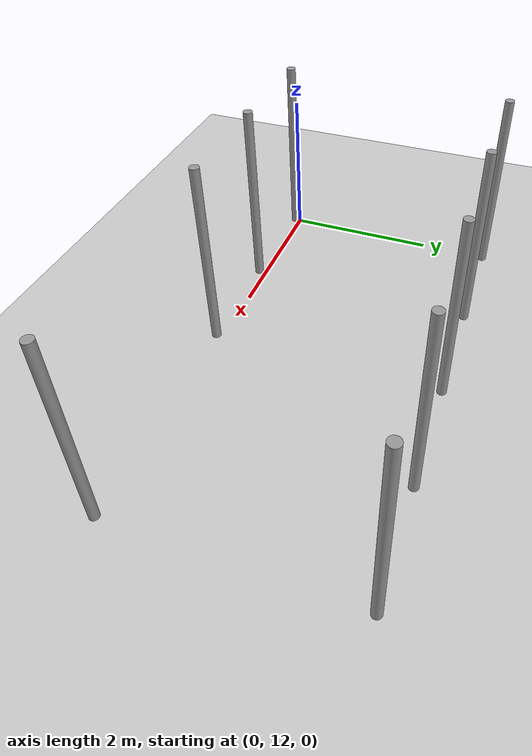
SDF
<sdf version="1.6">
 <world name="default">
  <model name="ground_plane">
   <static>1</static>
   <link name="link">
    <collision name="collision">
     <geometry><plane><normal>0 0 1</normal><size>100 100</size></plane></geometry>
     <surface><friction><ode><mu>100</mu><mu2>50</mu2></ode></friction></surface>
    </collision>
    <visual name="visual">
     <cast_shadows>0</cast_shadows>
     <geometry><plane><normal>0 0 1</normal><size>100 100</size></plane></geometry>
     <material>
      <script><uri>file://media/materials/scripts/gazebo.material</uri><name>Gazebo/Grey</name></script>
     </material>
    </visual>
   </link>
  </model>
  <model name="pole_1">
   <link name="link_0">
    <inertial>
     <mass>0.0364582</mass>
     <inertia>
      <ixx>0.00312124</ixx>
      <ixy>0</ixy>
      <ixz>0</ixz>
      <iyy>0.00312124</iyy>
      <iyz>0</iyz>
      <izz>0.00016615</izz>
     </inertia>
    </inertial>
    <visual name="visual">
     <geometry><cylinder><radius>0.06</radius><length>2.5</length></cylinder></geometry>
     <material>
      <lighting>1</lighting>
      <script><uri>file://media/materials/scripts/gazebo.material</uri><name>Gazebo/Grey</name></script>
      <ambient>0.3 0.3 0.3 1</ambient>
      <diffuse>0.7 0.7 0.7 1</diffuse>
      <specular>0.01 0.01 0.01 1</specular>
      <emissive>0 0 0 1</emissive>
      <shader type="vertex"><normal_map>__default__</normal_map></shader>
     </material>
    </visual>
    <collision name="collision">
     <geometry><cylinder><radius>0.06</radius><length>2.5</length></cylinder></geometry>
     <surface>
      <friction>
       <ode><mu>1</mu><mu2>1</mu2><fdir1>0 0 0</fdir1><slip1>0</slip1><slip2>0</slip2></ode>
       <torsional>
        <coefficient>1</coefficient>
        <patch_radius>0</patch_radius>
        <surface_radius>0</surface_radius>
        <use_patch_radius>1</use_patch_radius>
        <ode><slip>0</slip></ode>
       </torsional>
      </friction>
      <bounce><restitution_coefficient>0</restitution_coefficient><threshold>1e+06</threshold></bounce>
      <contact>
       <collide_without_contact>0</collide_without_contact>
       <collide_without_contact_bitmask>1</collide_without_contact_bitmask>
       <collide_bitmask>1</collide_bitmask>
       <ode>
        <soft_cfm>0</soft_cfm>
        <soft_erp>0.2</soft_erp>
        <kp>1e+13</kp>
        <kd>1</kd>
        <max_vel>0.01</max_vel>
        <min_depth>0</min_depth>
       </ode>
       <bullet>
        <split_impulse>1</split_impulse>
        <split_impulse_penetration_threshold>-0.01</split_impulse_penetration_threshold>
        <soft_cfm>0</soft_cfm>
        <soft_erp>0.2</soft_erp>
        <kp>1e+13</kp>
        <kd>1</kd>
       </bullet>
      </contact>
     </surface>
    </collision>
   </link>
   <static>0</static>
   <pose>-0.008122 11.9213 1.24999 -0 2e-06 -0.017959</pose>
  </model>
  <model name="pole_2">
   <link name="link_0">
    <inertial>
     <mass>0.0364582</mass>
     <inertia>
      <ixx>0.00312124</ixx>
      <ixy>0</ixy>
      <ixz>0</ixz>
      <iyy>0.00312124</iyy>
      <iyz>0</iyz>
      <izz>0.00016615</izz>
     </inertia>
    </inertial>
    <visual name="visual">
     <geometry><cylinder><radius>0.06</radius><length>2.5</length></cylinder></geometry>
     <material>
      <lighting>1</lighting>
      <script><uri>file://media/materials/scripts/gazebo.material</uri><name>Gazebo/Grey</name></script>
      <ambient>0.3 0.3 0.3 1</ambient>
      <diffuse>0.7 0.7 0.7 1</diffuse>
      <specular>0.01 0.01 0.01 1</specular>
      <emissive>0 0 0 1</emissive>
      <shader type="vertex"><normal_map>__default__</normal_map></shader>
     </material>
    </visual>
    <collision name="collision">
     <geometry><cylinder><radius>0.06</radius><length>2.5</length></cylinder></geometry>
     <surface>
      <friction>
       <ode><mu>1</mu><mu2>1</mu2><fdir1>0 0 0</fdir1><slip1>0</slip1><slip2>0</slip2></ode>
       <torsional>
        <coefficient>1</coefficient>
        <patch_radius>0</patch_radius>
        <surface_radius>0</surface_radius>
        <use_patch_radius>1</use_patch_radius>
        <ode><slip>0</slip></ode>
       </torsional>
      </friction>
      <bounce><restitution_coefficient>0</restitution_coefficient><threshold>1e+06</threshold></bounce>
      <contact>
       <collide_without_contact>0</collide_without_contact>
       <collide_without_contact_bitmask>1</collide_without_contact_bitmask>
       <collide_bitmask>1</collide_bitmask>
       <ode>
        <soft_cfm>0</soft_cfm>
        <soft_erp>0.2</soft_erp>
        <kp>1e+13</kp>
        <kd>1</kd>
        <max_vel>0.01</max_vel>
        <min_depth>0</min_depth>
       </ode>
       <bullet>
        <split_impulse>1</split_impulse>
        <split_impulse_penetration_threshold>-0.01</split_impulse_penetration_threshold>
        <soft_cfm>0</soft_cfm>
        <soft_erp>0.2</soft_erp>
        <kp>1e+13</kp>
        <kd>1</kd>
       </bullet>
      </contact>
     </surface>
    </collision>
   </link>
   <static>0</static>
   <pose>0.027547 14.8942 1.25 -1e-06 1e-06 0.219671</pose>
  </model>
  <model name="pole_20">
   <link name="link_0">
    <inertial>
     <mass>0.0364582</mass>
     <inertia>
      <ixx>0.00312124</ixx>
      <ixy>0</ixy>
      <ixz>0</ixz>
      <iyy>0.00312124</iyy>
      <iyz>0</iyz>
      <izz>0.00016615</izz>
     </inertia>
    </inertial>
    <visual name="visual">
     <geometry><cylinder><radius>0.06</radius><length>2.5</length></cylinder></geometry>
     <material>
      <lighting>1</lighting>
      <script><uri>file://media/materials/scripts/gazebo.material</uri><name>Gazebo/Grey</name></script>
      <ambient>0.3 0.3 0.3 1</ambient>
      <diffuse>0.7 0.7 0.7 1</diffuse>
      <specular>0.01 0.01 0.01 1</specular>
      <emissive>0 0 0 1</emissive>
      <shader type="vertex"><normal_map>__default__</normal_map></shader>
     </material>
    </visual>
    <collision name="collision">
     <geometry><cylinder><radius>0.06</radius><length>2.5</length></cylinder></geometry>
     <surface>
      <friction>
       <ode><mu>1</mu><mu2>1</mu2><fdir1>0 0 0</fdir1><slip1>0</slip1><slip2>0</slip2></ode>
       <torsional>
        <coefficient>1</coefficient>
        <patch_radius>0</patch_radius>
        <surface_radius>0</surface_radius>
        <use_patch_radius>1</use_patch_radius>
        <ode><slip>0</slip></ode>
       </torsional>
      </friction>
      <bounce><restitution_coefficient>0</restitution_coefficient><threshold>1e+06</threshold></bounce>
      <contact>
       <collide_without_contact>0</collide_without_contact>
       <collide_without_contact_bitmask>1</collide_without_contact_bitmask>
       <collide_bitmask>1</collide_bitmask>
       <ode>
        <soft_cfm>0</soft_cfm>
        <soft_erp>0.2</soft_erp>
        <kp>1e+13</kp>
        <kd>1</kd>
        <max_vel>0.01</max_vel>
        <min_depth>0</min_depth>
       </ode>
       <bullet>
        <split_impulse>1</split_impulse>
        <split_impulse_penetration_threshold>-0.01</split_impulse_penetration_threshold>
        <soft_cfm>0</soft_cfm>
        <soft_erp>0.2</soft_erp>
        <kp>1e+13</kp>
        <kd>1</kd>
       </bullet>
      </contact>
     </surface>
    </collision>
   </link>
   <static>0</static>
   <pose>1.39577 11.9005 1.25 -1e-06 -0 -0.005165</pose>
  </model>
  <model name="pole_21">
   <link name="link_0">
    <inertial>
     <mass>0.0364582</mass>
     <inertia>
      <ixx>0.00312124</ixx>
      <ixy>0</ixy>
      <ixz>0</ixz>
      <iyy>0.00312124</iyy>
      <iyz>0</iyz>
      <izz>0.00016615</izz>
     </inertia>
    </inertial>
    <visual name="visual">
     <geometry><cylinder><radius>0.06</radius><length>2.5</length></cylinder></geometry>
     <material>
      <lighting>1</lighting>
      <script><uri>file://media/materials/scripts/gazebo.material</uri><name>Gazebo/Grey</name></script>
      <ambient>0.3 0.3 0.3 1</ambient>
      <diffuse>0.7 0.7 0.7 1</diffuse>
      <specular>0.01 0.01 0.01 1</specular>
      <emissive>0 0 0 1</emissive>
      <shader type="vertex"><normal_map>__default__</normal_map></shader>
     </material>
    </visual>
    <collision name="collision">
     <geometry><cylinder><radius>0.06</radius><length>2.5</length></cylinder></geometry>
     <surface>
      <friction>
       <ode><mu>1</mu><mu2>1</mu2><fdir1>0 0 0</fdir1><slip1>0</slip1><slip2>0</slip2></ode>
       <torsional>
        <coefficient>1</coefficient>
        <patch_radius>0</patch_radius>
        <surface_radius>0</surface_radius>
        <use_patch_radius>1</use_patch_radius>
        <ode><slip>0</slip></ode>
       </torsional>
      </friction>
      <bounce><restitution_coefficient>0</restitution_coefficient><threshold>1e+06</threshold></bounce>
      <contact>
       <collide_without_contact>0</collide_without_contact>
       <collide_without_contact_bitmask>1</collide_without_contact_bitmask>
       <collide_bitmask>1</collide_bitmask>
       <ode>
        <soft_cfm>0</soft_cfm>
        <soft_erp>0.2</soft_erp>
        <kp>1e+13</kp>
        <kd>1</kd>
        <max_vel>0.01</max_vel>
        <min_depth>0</min_depth>
       </ode>
       <bullet>
        <split_impulse>1</split_impulse>
        <split_impulse_penetration_threshold>-0.01</split_impulse_penetration_threshold>
        <soft_cfm>0</soft_cfm>
        <soft_erp>0.2</soft_erp>
        <kp>1e+13</kp>
        <kd>1</kd>
       </bullet>
      </contact>
     </surface>
    </collision>
   </link>
   <static>0</static>
   <pose>2.80779 11.901 1.25 0 0 -0.022297</pose>
  </model>
  <model name="pole_23">
   <link name="link_0">
    <inertial>
     <mass>0.0364582</mass>
     <inertia>
      <ixx>0.00312124</ixx>
      <ixy>0</ixy>
      <ixz>0</ixz>
      <iyy>0.00312124</iyy>
      <iyz>0</iyz>
      <izz>0.00016615</izz>
     </inertia>
    </inertial>
    <visual name="visual">
     <geometry><cylinder><radius>0.06</radius><length>2.5</length></cylinder></geometry>
     <material>
      <lighting>1</lighting>
      <script><uri>file://media/materials/scripts/gazebo.material</uri><name>Gazebo/Grey</name></script>
      <ambient>0.3 0.3 0.3 1</ambient>
      <diffuse>0.7 0.7 0.7 1</diffuse>
      <specular>0.01 0.01 0.01 1</specular>
      <emissive>0 0 0 1</emissive>
      <shader type="vertex"><normal_map>__default__</normal_map></shader>
     </material>
    </visual>
    <collision name="collision">
     <geometry><cylinder><radius>0.06</radius><length>2.5</length></cylinder></geometry>
     <surface>
      <friction>
       <ode><mu>1</mu><mu2>1</mu2><fdir1>0 0 0</fdir1><slip1>0</slip1><slip2>0</slip2></ode>
       <torsional>
        <coefficient>1</coefficient>
        <patch_radius>0</patch_radius>
        <surface_radius>0</surface_radius>
        <use_patch_radius>1</use_patch_radius>
        <ode><slip>0</slip></ode>
       </torsional>
      </friction>
      <bounce><restitution_coefficient>0</restitution_coefficient><threshold>1e+06</threshold></bounce>
      <contact>
       <collide_without_contact>0</collide_without_contact>
       <collide_without_contact_bitmask>1</collide_without_contact_bitmask>
       <collide_bitmask>1</collide_bitmask>
       <ode>
        <soft_cfm>0</soft_cfm>
        <soft_erp>0.2</soft_erp>
        <kp>1e+13</kp>
        <kd>1</kd>
        <max_vel>0.01</max_vel>
        <min_depth>0</min_depth>
       </ode>
       <bullet>
        <split_impulse>1</split_impulse>
        <split_impulse_penetration_threshold>-0.01</split_impulse_penetration_threshold>
        <soft_cfm>0</soft_cfm>
        <soft_erp>0.2</soft_erp>
        <kp>1e+13</kp>
        <kd>1</kd>
       </bullet>
      </contact>
     </surface>
    </collision>
   </link>
   <static>0</static>
   <pose>5.61606 11.9005 1.24999 0 1e-06 -0.004268</pose>
  </model>
  <model name="pole_25">
   <link name="link_0">
    <inertial>
     <mass>0.0364582</mass>
     <inertia>
      <ixx>0.00312124</ixx>
      <ixy>0</ixy>
      <ixz>0</ixz>
      <iyy>0.00312124</iyy>
      <iyz>0</iyz>
      <izz>0.00016615</izz>
     </inertia>
    </inertial>
    <visual name="visual">
     <geometry><cylinder><radius>0.06</radius><length>2.5</length></cylinder></geometry>
     <material>
      <lighting>1</lighting>
      <script><uri>file://media/materials/scripts/gazebo.material</uri><name>Gazebo/Grey</name></script>
      <ambient>0.3 0.3 0.3 1</ambient>
      <diffuse>0.7 0.7 0.7 1</diffuse>
      <specular>0.01 0.01 0.01 1</specular>
      <emissive>0 0 0 1</emissive>
      <shader type="vertex"><normal_map>__default__</normal_map></shader>
     </material>
    </visual>
    <collision name="collision">
     <geometry><cylinder><radius>0.06</radius><length>2.5</length></cylinder></geometry>
     <surface>
      <friction>
       <ode><mu>1</mu><mu2>1</mu2><fdir1>0 0 0</fdir1><slip1>0</slip1><slip2>0</slip2></ode>
       <torsional>
        <coefficient>1</coefficient>
        <patch_radius>0</patch_radius>
        <surface_radius>0</surface_radius>
        <use_patch_radius>1</use_patch_radius>
        <ode><slip>0</slip></ode>
       </torsional>
      </friction>
      <bounce><restitution_coefficient>0</restitution_coefficient><threshold>1e+06</threshold></bounce>
      <contact>
       <collide_without_contact>0</collide_without_contact>
       <collide_without_contact_bitmask>1</collide_without_contact_bitmask>
       <collide_bitmask>1</collide_bitmask>
       <ode>
        <soft_cfm>0</soft_cfm>
        <soft_erp>0.2</soft_erp>
        <kp>1e+13</kp>
        <kd>1</kd>
        <max_vel>0.01</max_vel>
        <min_depth>0</min_depth>
       </ode>
       <bullet>
        <split_impulse>1</split_impulse>
        <split_impulse_penetration_threshold>-0.01</split_impulse_penetration_threshold>
        <soft_cfm>0</soft_cfm>
        <soft_erp>0.2</soft_erp>
        <kp>1e+13</kp>
        <kd>1</kd>
       </bullet>
      </contact>
     </surface>
    </collision>
   </link>
   <static>0</static>
   <pose>1.4041 14.8805 1.24999 -4e-05 0.000282 -0.025747</pose>
  </model>
  <model name="pole_26">
   <link name="link_0">
    <inertial>
     <mass>0.0364582</mass>
     <inertia>
      <ixx>0.00312124</ixx>
      <ixy>0</ixy>
      <ixz>0</ixz>
      <iyy>0.00312124</iyy>
      <iyz>0</iyz>
      <izz>0.00016615</izz>
     </inertia>
    </inertial>
    <visual name="visual">
     <geometry><cylinder><radius>0.06</radius><length>2.5</length></cylinder></geometry>
     <material>
      <lighting>1</lighting>
      <script><uri>file://media/materials/scripts/gazebo.material</uri><name>Gazebo/Grey</name></script>
      <ambient>0.3 0.3 0.3 1</ambient>
      <diffuse>0.7 0.7 0.7 1</diffuse>
      <specular>0.01 0.01 0.01 1</specular>
      <emissive>0 0 0 1</emissive>
      <shader type="vertex"><normal_map>__default__</normal_map></shader>
     </material>
    </visual>
    <collision name="collision">
     <geometry><cylinder><radius>0.06</radius><length>2.5</length></cylinder></geometry>
     <surface>
      <friction>
       <ode><mu>1</mu><mu2>1</mu2><fdir1>0 0 0</fdir1><slip1>0</slip1><slip2>0</slip2></ode>
       <torsional>
        <coefficient>1</coefficient>
        <patch_radius>0</patch_radius>
        <surface_radius>0</surface_radius>
        <use_patch_radius>1</use_patch_radius>
        <ode><slip>0</slip></ode>
       </torsional>
      </friction>
      <bounce><restitution_coefficient>0</restitution_coefficient><threshold>1e+06</threshold></bounce>
      <contact>
       <collide_without_contact>0</collide_without_contact>
       <collide_without_contact_bitmask>1</collide_without_contact_bitmask>
       <collide_bitmask>1</collide_bitmask>
       <ode>
        <soft_cfm>0</soft_cfm>
        <soft_erp>0.2</soft_erp>
        <kp>1e+13</kp>
        <kd>1</kd>
        <max_vel>0.01</max_vel>
        <min_depth>0</min_depth>
       </ode>
       <bullet>
        <split_impulse>1</split_impulse>
        <split_impulse_penetration_threshold>-0.01</split_impulse_penetration_threshold>
        <soft_cfm>0</soft_cfm>
        <soft_erp>0.2</soft_erp>
        <kp>1e+13</kp>
        <kd>1</kd>
       </bullet>
      </contact>
     </surface>
    </collision>
   </link>
   <static>0</static>
   <pose>2.80781 14.8799 1.24999 -1e-06 -0 0.004808</pose>
  </model>
  <model name="pole_27">
   <link name="link_0">
    <inertial>
     <mass>0.0364582</mass>
     <inertia>
      <ixx>0.00312124</ixx>
      <ixy>0</ixy>
      <ixz>0</ixz>
      <iyy>0.00312124</iyy>
      <iyz>0</iyz>
      <izz>0.00016615</izz>
     </inertia>
    </inertial>
    <visual name="visual">
     <geometry><cylinder><radius>0.06</radius><length>2.5</length></cylinder></geometry>
     <material>
      <lighting>1</lighting>
      <script><uri>file://media/materials/scripts/gazebo.material</uri><name>Gazebo/Grey</name></script>
      <ambient>0.3 0.3 0.3 1</ambient>
      <diffuse>0.7 0.7 0.7 1</diffuse>
      <specular>0.01 0.01 0.01 1</specular>
      <emissive>0 0 0 1</emissive>
      <shader type="vertex"><normal_map>__default__</normal_map></shader>
     </material>
    </visual>
    <collision name="collision">
     <geometry><cylinder><radius>0.06</radius><length>2.5</length></cylinder></geometry>
     <surface>
      <friction>
       <ode><mu>1</mu><mu2>1</mu2><fdir1>0 0 0</fdir1><slip1>0</slip1><slip2>0</slip2></ode>
       <torsional>
        <coefficient>1</coefficient>
        <patch_radius>0</patch_radius>
        <surface_radius>0</surface_radius>
        <use_patch_radius>1</use_patch_radius>
        <ode><slip>0</slip></ode>
       </torsional>
      </friction>
      <bounce><restitution_coefficient>0</restitution_coefficient><threshold>1e+06</threshold></bounce>
      <contact>
       <collide_without_contact>0</collide_without_contact>
       <collide_without_contact_bitmask>1</collide_without_contact_bitmask>
       <collide_bitmask>1</collide_bitmask>
       <ode>
        <soft_cfm>0</soft_cfm>
        <soft_erp>0.2</soft_erp>
        <kp>1e+13</kp>
        <kd>1</kd>
        <max_vel>0.01</max_vel>
        <min_depth>0</min_depth>
       </ode>
       <bullet>
        <split_impulse>1</split_impulse>
        <split_impulse_penetration_threshold>-0.01</split_impulse_penetration_threshold>
        <soft_cfm>0</soft_cfm>
        <soft_erp>0.2</soft_erp>
        <kp>1e+13</kp>
        <kd>1</kd>
       </bullet>
      </contact>
     </surface>
    </collision>
   </link>
   <static>0</static>
   <pose>4.21201 14.8801 1.25 -1e-06 -0 -0.000913</pose>
  </model>
  <model name="pole_28">
   <link name="link_0">
    <inertial>
     <mass>0.0364582</mass>
     <inertia>
      <ixx>0.00312124</ixx>
      <ixy>0</ixy>
      <ixz>0</ixz>
      <iyy>0.00312124</iyy>
      <iyz>0</iyz>
      <izz>0.00016615</izz>
     </inertia>
    </inertial>
    <visual name="visual">
     <geometry><cylinder><radius>0.06</radius><length>2.5</length></cylinder></geometry>
     <material>
      <lighting>1</lighting>
      <script><uri>file://media/materials/scripts/gazebo.material</uri><name>Gazebo/Grey</name></script>
      <ambient>0.3 0.3 0.3 1</ambient>
      <diffuse>0.7 0.7 0.7 1</diffuse>
      <specular>0.01 0.01 0.01 1</specular>
      <emissive>0 0 0 1</emissive>
      <shader type="vertex"><normal_map>__default__</normal_map></shader>
     </material>
    </visual>
    <collision name="collision">
     <geometry><cylinder><radius>0.06</radius><length>2.5</length></cylinder></geometry>
     <surface>
      <friction>
       <ode><mu>1</mu><mu2>1</mu2><fdir1>0 0 0</fdir1><slip1>0</slip1><slip2>0</slip2></ode>
       <torsional>
        <coefficient>1</coefficient>
        <patch_radius>0</patch_radius>
        <surface_radius>0</surface_radius>
        <use_patch_radius>1</use_patch_radius>
        <ode><slip>0</slip></ode>
       </torsional>
      </friction>
      <bounce><restitution_coefficient>0</restitution_coefficient><threshold>1e+06</threshold></bounce>
      <contact>
       <collide_without_contact>0</collide_without_contact>
       <collide_without_contact_bitmask>1</collide_without_contact_bitmask>
       <collide_bitmask>1</collide_bitmask>
       <ode>
        <soft_cfm>0</soft_cfm>
        <soft_erp>0.2</soft_erp>
        <kp>1e+13</kp>
        <kd>1</kd>
        <max_vel>0.01</max_vel>
        <min_depth>0</min_depth>
       </ode>
       <bullet>
        <split_impulse>1</split_impulse>
        <split_impulse_penetration_threshold>-0.01</split_impulse_penetration_threshold>
        <soft_cfm>0</soft_cfm>
        <soft_erp>0.2</soft_erp>
        <kp>1e+13</kp>
        <kd>1</kd>
       </bullet>
      </contact>
     </surface>
    </collision>
   </link>
   <static>0</static>
   <pose>5.6202 14.8798 1.24999 -1e-06 -1e-06 -0.057995</pose>
  </model>
 </world>
</sdf>
